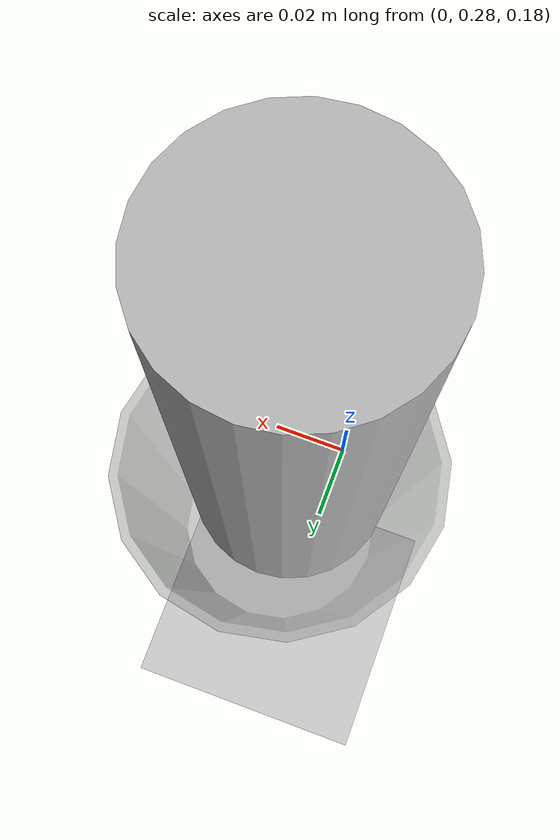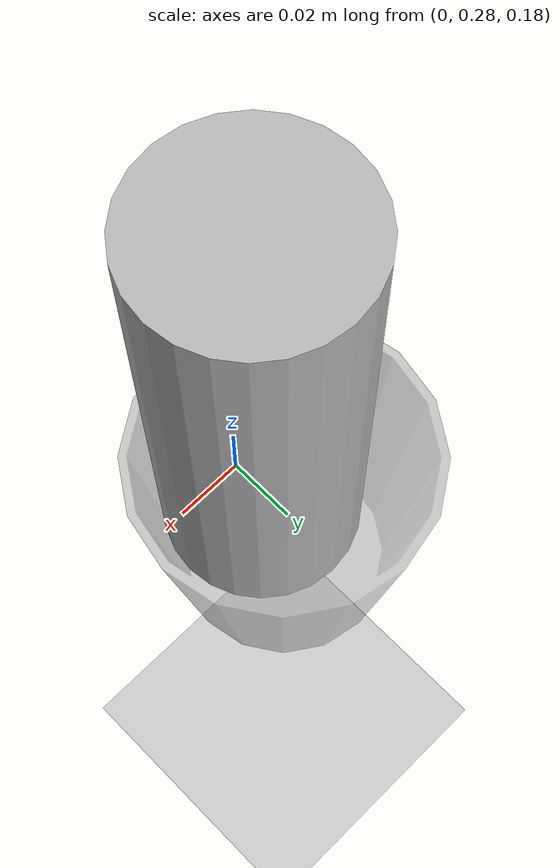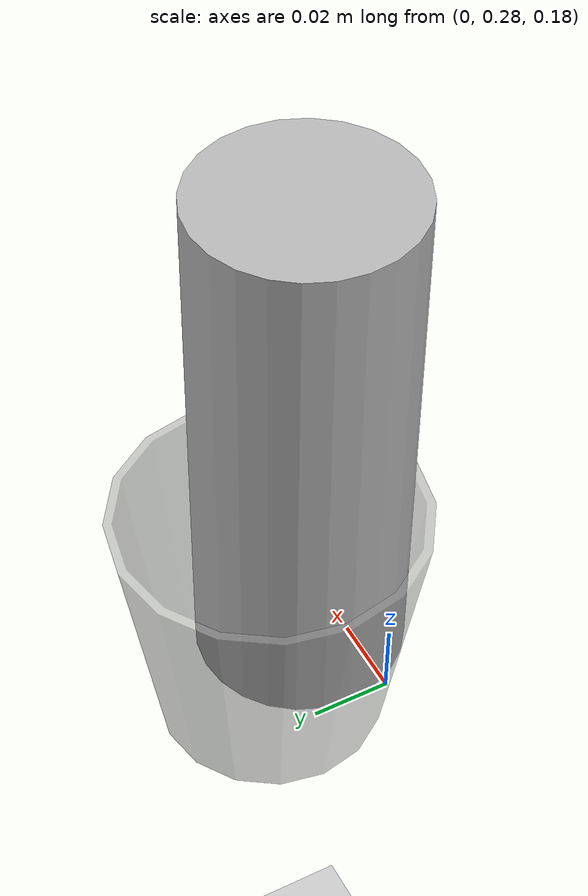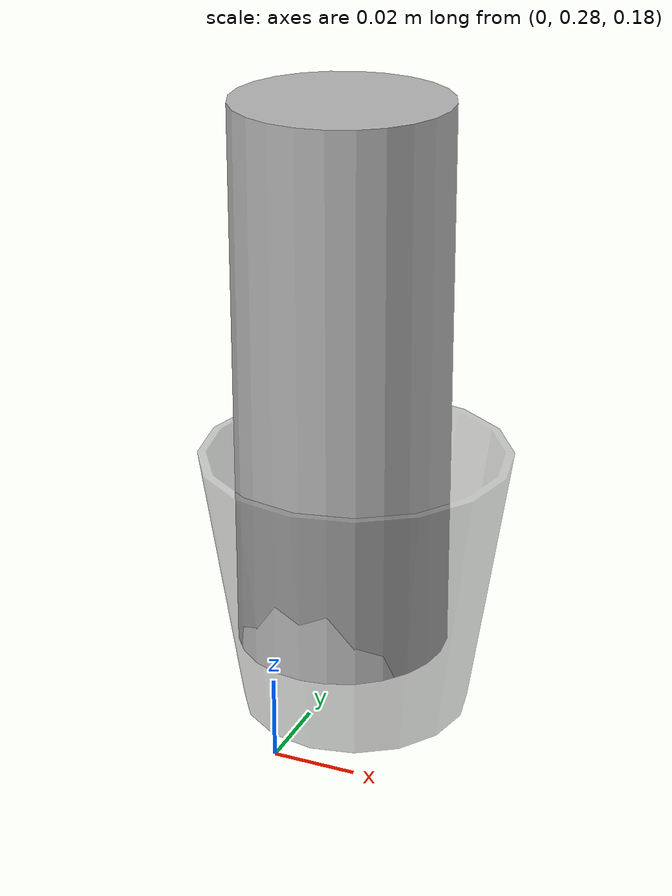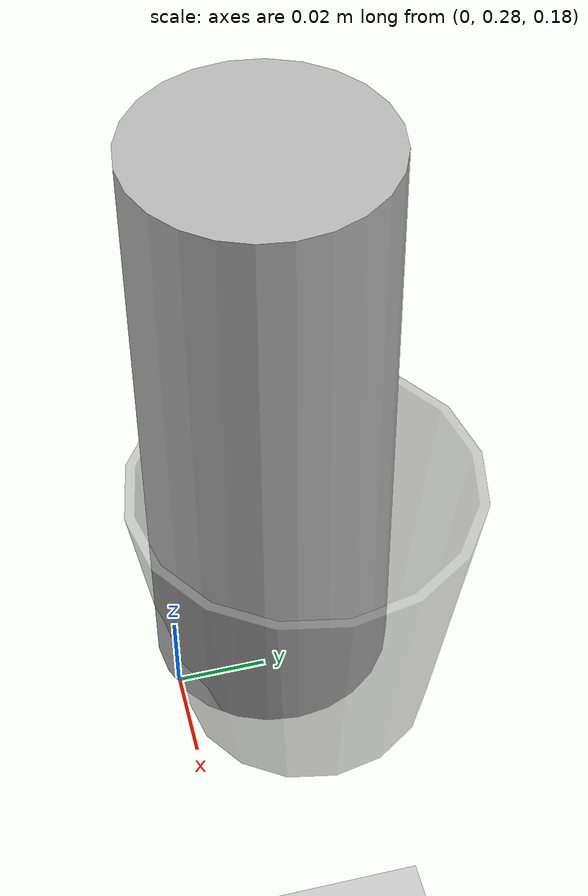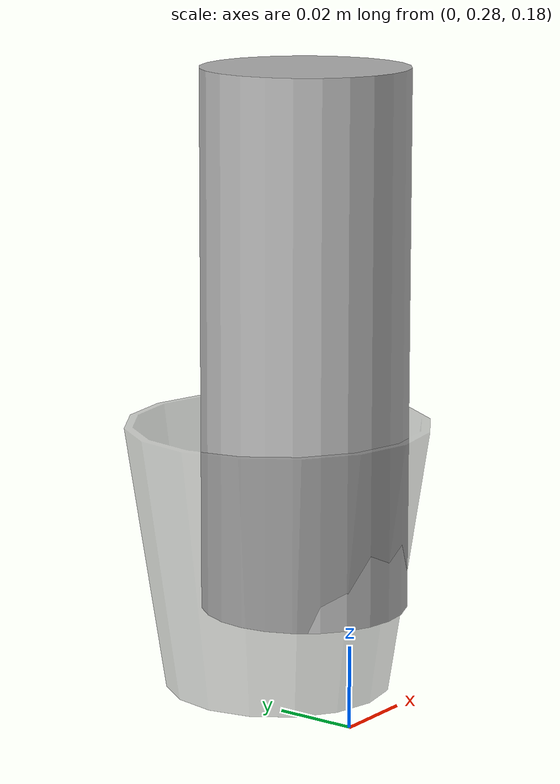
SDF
<sdf version="1.6">
 <world name="default">
  <light name="sun" type="directional">
   <pose>0 0 10 0 -0 0</pose>
   <diffuse>0.8 0.8 0.8 1</diffuse>
   <specular>0.2 0.2 0.2 1</specular>
   <attenuation>
    <range>1000</range>
    <constant>0.9</constant>
    <linear>0.01</linear>
    <quadratic>0.001</quadratic>
   </attenuation>
   <direction>-0.5 0.1 -0.9</direction>
  </light>
  <model name="ground_plane">
   <static>1</static>
   <link name="link">
    <collision name="collision">
     <geometry><plane><normal>0 0 1</normal><size>100 100</size></plane></geometry>
     <surface>
      <contact><collide_bitmask>65535</collide_bitmask></contact>
      <friction><ode><mu>100</mu><mu2>50</mu2></ode></friction>
     </surface>
    </collision>
    <visual name="visual">
     <cast_shadows>0</cast_shadows>
     <geometry><plane><normal>0 0 1</normal><size>100 100</size></plane></geometry>
     <material>
      <script><uri>file://media/materials/scripts/gazebo.material</uri><name>Gazebo/Grey</name></script>
     </material>
    </visual>
   </link>
  </model>
  <gravity>0 0 -9.8</gravity>
  <magnetic_field>6e-06 2.3e-05 -4.2e-05</magnetic_field>
  <atmosphere type="adiabatic"/>
  <physics name="default_physics" default="0" type="ode">
   <max_step_size>0.001</max_step_size>
   <real_time_factor>1</real_time_factor>
   <real_time_update_rate>1000</real_time_update_rate>
  </physics>
  <scene><ambient>0.4 0.4 0.4 1</ambient><background>0.7 0.7 0.7 1</background><shadows>1</shadows></scene>
  <spherical_coordinates>
   <surface_model>EARTH_WGS84</surface_model>
   <latitude_deg>0</latitude_deg>
   <longitude_deg>0</longitude_deg>
   <elevation>0</elevation>
   <heading_deg>0</heading_deg>
  </spherical_coordinates>
  <model name="beer">
   <link name="link">
    <pose>0 0 0.115 0 -0 0</pose>
    <inertial>
     <mass>0.39</mass>
     <inertia><ixx>0.00058</ixx><ixy>0</ixy><ixz>0</ixz><iyy>0.00058</iyy><iyz>0</iyz><izz>0.00019</izz></inertia>
    </inertial>
    <collision name="collision">
     <geometry><cylinder><radius>0.025</radius><length>0.13</length></cylinder></geometry>
    </collision>
    <visual name="visual">
     <geometry><cylinder><radius>0.025</radius><length>0.13</length></cylinder></geometry>
     <material>
      <script>
       <uri>model://beer/materials/scripts</uri>
       <uri>model://beer/materials/textures</uri>
       <name>Beer/Diffuse</name>
      </script>
     </material>
    </visual>
   </link>
   <pose>0.008838 0.3 0.154974 0 0.00138 0.000267</pose>
  </model>
  <model name="plastic_cup_small">
   <pose>0.008838 0.3 0.154974 0 0.00138 0.000267</pose>
   <link name="link2">
    <pose>0 0 0.065 0 0 0</pose>
    <inertial>
     <mass>0.0599</mass>
     <inertia>
      <ixx>0.0003028961527030333</ixx>
      <ixy>0</ixy>
      <ixz>0</ixz>
      <iyy>0.0003028961527030333</iyy>
      <iyz>0</iyz>
      <izz>3.2876352372798436e-05</izz>
     </inertia>
    </inertial>
    <collision name="collision2">
     <geometry><mesh><uri>model://plastic_cup/meshes/plastic_cup.dae</uri><scale>1 1 0.5</scale></mesh></geometry>
     <surface>
      <contact>
       <poissons_ratio>0.35</poissons_ratio>
       <elastic_modulus>3.102640776e+09</elastic_modulus>
       <ode><kp>100000</kp><kd>100</kd><max_vel>100.0</max_vel><min_depth>0.001</min_depth></ode>
      </contact>
      <friction>
       <torsional>
        <coefficient>1.0</coefficient>
        <use_patch_radius>0</use_patch_radius>
        <surface_radius>0.01</surface_radius>
       </torsional>
      </friction>
     </surface>
    </collision>
    <visual name="visual2">
     <geometry><mesh><uri>model://plastic_cup/meshes/plastic_cup.dae</uri><scale>1 1 0.5</scale></mesh></geometry>
     <material>
      <script><uri>file://media/materials/scripts/gazebo.material</uri><name>Gazebo/GreyTransparent</name></script>
     </material>
    </visual>
   </link>
  </model>
 </world>
</sdf>
